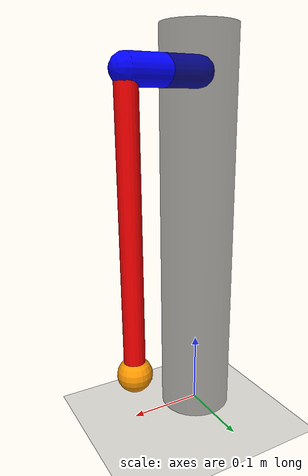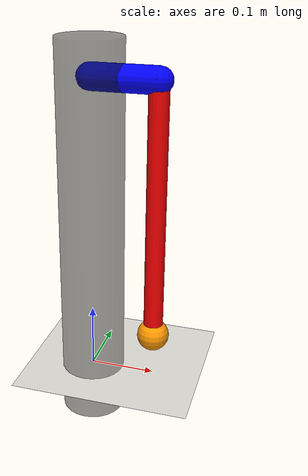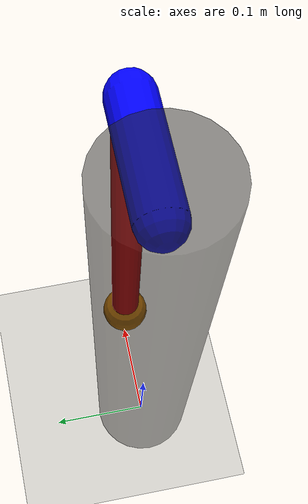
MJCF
<mujoco model="furuta">

    <option timestep="0.002" gravity="0 0 -9.81"/>

    <worldbody>
        <geom type="plane" size="5 5 0.1"/>
        <body name="base" pos="0 0 0.45">
            <geom type="cylinder"
                pos="0 0 -0.225"
                size="0.05 0.3"
                rgba="0.1 0.1 0.1 0.5"/>
            <body name="arm" pos="0 0 0.02">

                <joint name="joint1"
                    type="hinge"
                    axis="0 0 1"/>

                <geom type="capsule"
                    fromto="0 0 0 0.1 0 0"
                    size="0.02"
                    mass="0.2"
                    rgba="0 0 1 1"/>

                <body name="pendulum" pos="0.1 0 0">

                    <joint name="joint2"
                        type="hinge"
                        axis="1 0 0"/>

                    <geom type="capsule"
                        pos="0 0 -0.2"
                        size="0.015 0.2"
                        mass="0.2"
                        rgba="1 0 0 1"/>

                    <!-- Bob at tip for visual clarity -->
                    <geom type="sphere"
                        pos="0 0 -0.4"
                        size="0.025"
                        rgba="1.0 0.6 0.0 1"
                        mass="0.5"/>
                </body>
            </body>
        </body>
    </worldbody>

    <contact>
        <exclude body1="base" body2="arm"/>
        <exclude body1="arm" body2="pendulum"/>
    </contact>

    <actuator>
        <!-- ctrlrange now matches F_MAX = 10 in the Python script -->
        <motor joint="joint1"
           ctrlrange="-20 20"
           gear="1"/>
    </actuator>

    <keyframe>
    <key name="upright"
        time="0"
        qpos="0 0"
        qvel="0 0"
        ctrl="0"
    />
    </keyframe>

</mujoco>
